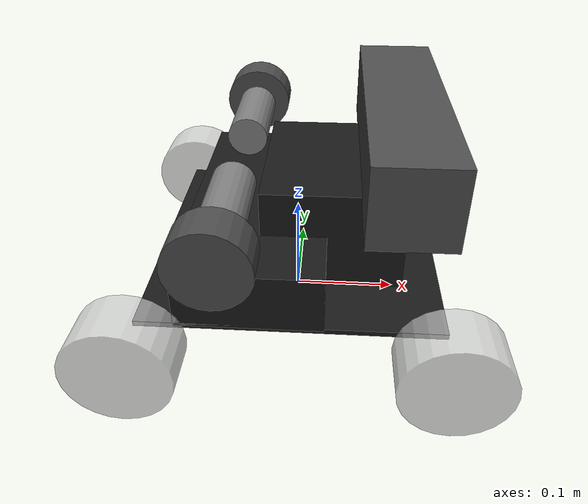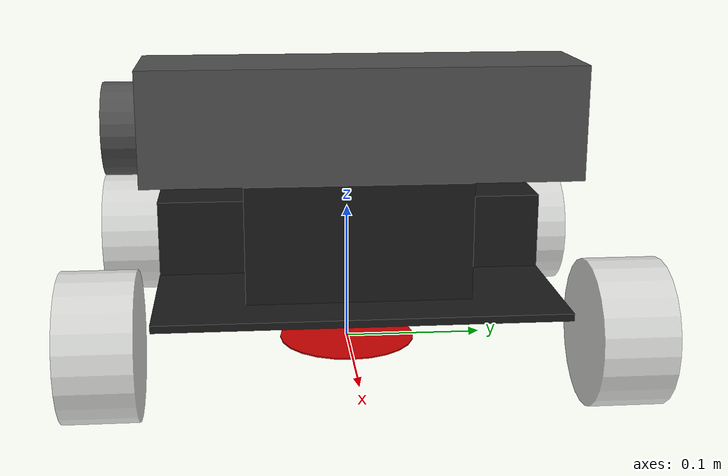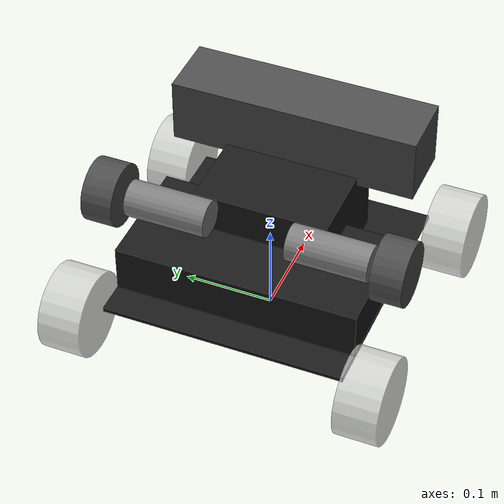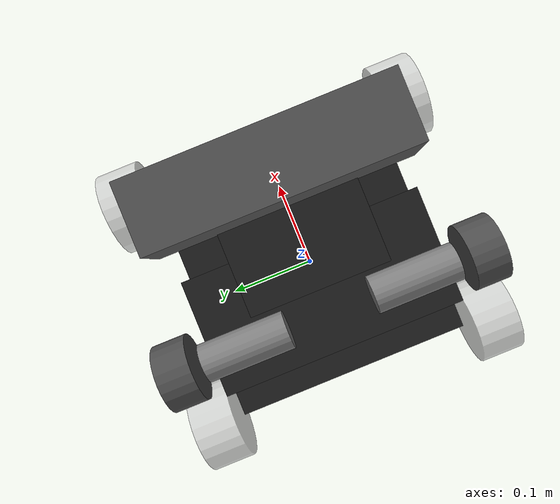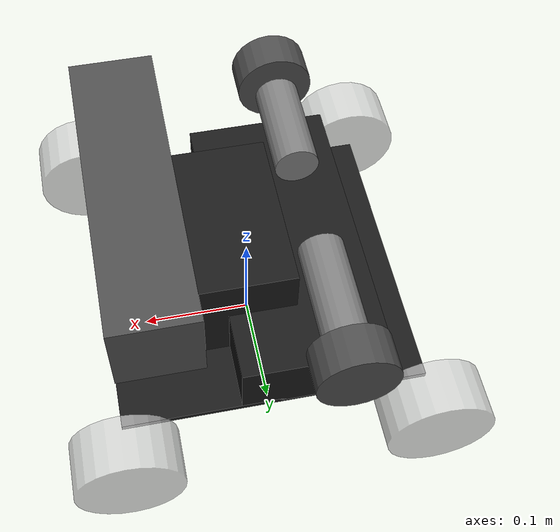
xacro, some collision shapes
<?xml version="1.0"?>
<robot name="myzharbot_robot" xmlns:xacro="http://ros.org/wiki/xacro">

  <!-- Included URDF/XACRO Files -->
  <xacro:include filename="$(find myzharbot_description)/urdf/materials.urdf" />
  <xacro:include filename="$(find myzharbot_description)/urdf/passive_sprocket.urdf.xacro" />
  <xacro:include filename="$(find myzharbot_description)/urdf/active_sprocket.urdf.xacro" />
  <xacro:include filename="$(find myzharbot_description)/urdf/motor.urdf.xacro" />
  <xacro:include filename="$(find myzharbot_description)/urdf/sensors/asus_xtion_pro.urdf.xacro"/>
  <!-- Included URDF/XACRO Files -->

  <!-- Global properties -->
  <property name="M_PI" value="3.14159"/>
  <!-- Global properties -->

  <!-- Sprockets params -->
  <property name="active_sprocket_radius" value="0.034925"/>
  <property name="passive_sprocket_radius" value="0.047625"/>
  <property name="active_sprocket_leght" value="0.034925"/>
  <property name="passive_sprocket_leght" value="0.047625"/>
  <property name="passive_sprocket_offset_x" value="0.135"/>
  <property name="passive_sprocket_offset_y" value="0.165"/>
  <property name="passive_sprocket_offset_z" value="0.047625"/>
  <property name="active_sprocket_offset_x" value="-0.055"/>
  <property name="active_sprocket_offset_y" value="0.160"/>
  <property name="active_sprocket_offset_z" value="0.150"/>
  <!-- Sprockets params -->

  <!-- Asus Xtion params -->
  <property name="cam_px" value="0.095" />
  <property name="cam_py" value="0.022" />
  <property name="cam_pz" value="0.1825" />
  <property name="cam_or" value="0" />
  <property name="cam_op" value="0" />
  <property name="cam_oy" value="0" />
  <!-- Asus Xtion params -->

  <!-- base_link -->
  <link name="base_link">
    <visual>
      <origin rpy="0 0 0" xyz="0 0 0"/>
      <geometry>
        <cylinder length=".001" radius="0.05"/>
      </geometry>
      <material name="Red" />
    </visual>
  </link>
  <!-- base_link -->

  <!-- Body chassis -->
  <link name="body_bottom_chassis_link">
    <visual>
      <geometry>
        <box size="0.27 0.27 .005"/>
      </geometry>
      <material name="Black" />
    </visual>
  </link>
  <joint name="Body_bottom" type="fixed">
    <axis xyz="0 0 1"/>
    <parent link="base_link"/>
    <child link="body_bottom_chassis_link"/>
    <origin rpy="0 0 0" xyz="0 0 ${passive_sprocket_offset_z+0.01}"/>
    <joint_properties damping="0.0" friction="0.0"/>
  </joint>

  <link name="body_top_chassis_link">
    <visual>
      <geometry>
        <box size="0.13 0.27 .055"/>
      </geometry>
      <material name="Black" />
    </visual>
  </link>
  <joint name="Body_top" type="fixed">
    <axis xyz="0 0 1"/>
    <parent link="base_link"/>
    <child link="body_top_chassis_link"/>
    <origin rpy="0 0 0" xyz="-0.035 0 ${passive_sprocket_offset_z+0.0375}"/>
    <joint_properties damping="0.0" friction="0.0"/>
  </joint>

  <link name="asus_support_link">
    <visual>
      <geometry>
        <box size="0.015 0.015 .015"/>
      </geometry>
      <material name="Black" />
    </visual>
  </link>
  <joint name="Asus_support" type="fixed">
    <axis xyz="0 0 1"/>
    <parent link="base_link"/>
    <child link="asus_support_link"/>
    <origin rpy="0 0 0" xyz="${cam_px-0.01725} 0 0.1575"/>
    <joint_properties damping="0.0" friction="0.0"/>
  </joint>
  <!-- Body chassis -->

  <!-- Jetson chassis -->
  <link name="jetson_chassis_link">
    <visual>
      <geometry>
        <box size="0.13 0.15 .095"/>
      </geometry>
      <material name="Black" />
    </visual>
  </link>
  <joint name="Jetson" type="fixed">
    <axis xyz="0 0 1"/>
    <parent link="base_link"/>
    <child link="jetson_chassis_link"/>
    <origin rpy="0 0 0" xyz="0.035 0 ${passive_sprocket_offset_z+0.0125+0.0475}"/>
    <joint_properties damping="0.0" friction="0.0"/>
  </joint>
  <!-- Jetson chassis -->

  <!-- Asus Xtion Pro Live -->
  <xacro:sensor_asus_xtion_pro parent="base_link"/>
  <!-- Asus Xtion Pro Live -->

  <!-- Active Sprockets -->
  <xacro:myzharbot_active_sprocket position="Left">
    <origin xyz="${active_sprocket_offset_x} ${active_sprocket_offset_y} ${active_sprocket_offset_z}" rpy="${-M_PI/2} 0 0" />
  </xacro:myzharbot_active_sprocket>
  <xacro:myzharbot_active_sprocket position="Right">
    <origin xyz="${active_sprocket_offset_x} ${-active_sprocket_offset_y} ${active_sprocket_offset_z}" rpy="${-M_PI/2} 0 0" />
  </xacro:myzharbot_active_sprocket>
  <xacro:myzharbot_motor position="Left">
    <origin xyz="${active_sprocket_offset_x} ${active_sprocket_offset_y-2*active_sprocket_leght} ${active_sprocket_offset_z}" rpy="${-M_PI/2} 0 0" />
  </xacro:myzharbot_motor>
  <xacro:myzharbot_motor position="Right">
    <origin xyz="${active_sprocket_offset_x} ${-(active_sprocket_offset_y-2*active_sprocket_leght)} ${active_sprocket_offset_z}" rpy="${-M_PI/2} 0 0" />
  </xacro:myzharbot_motor>
  <!-- Active Sprockets -->

  <!-- Passive Sprockets -->
  <xacro:myzharbot_passive_sprocket sprocket_suffix="bfl" position="Left">
    <origin xyz="${passive_sprocket_offset_x} ${passive_sprocket_offset_y} ${passive_sprocket_offset_z}" rpy="${-M_PI/2} 0 0" />
  </xacro:myzharbot_passive_sprocket>
  <xacro:myzharbot_passive_sprocket sprocket_suffix="brl" position="Left">
    <origin xyz="${-passive_sprocket_offset_x} ${passive_sprocket_offset_y} ${passive_sprocket_offset_z}" rpy="${-M_PI/2} 0 0" />
  </xacro:myzharbot_passive_sprocket>
  <xacro:myzharbot_passive_sprocket sprocket_suffix="bfr" position="Right">
    <origin xyz="${passive_sprocket_offset_x} ${-passive_sprocket_offset_y} ${passive_sprocket_offset_z}" rpy="${-M_PI/2} 0 0" />
  </xacro:myzharbot_passive_sprocket>
  <xacro:myzharbot_passive_sprocket sprocket_suffix="brr" position="Right">
    <origin xyz="${-passive_sprocket_offset_x} ${-passive_sprocket_offset_y} ${passive_sprocket_offset_z}" rpy="${-M_PI/2} 0 0" />
  </xacro:myzharbot_passive_sprocket>
  <!-- Passive Sprockets -->

</robot>

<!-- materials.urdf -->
<robot name="myzharbot_materials">

  <material name="Black">
    <color rgba="0.1 0.1 0.1 1.0"/>
  </material>

  <material name="Blue">
    <color rgba="0.0 0.0 0.8 1.0"/>
  </material>

  <material name="Green">
    <color rgba="0.0 0.8 0.0 1.0"/>
  </material>

  <material name="Grey">
    <color rgba="0.5 0.5 0.5 1.0"/>
  </material>

  <material name="DarkGrey">
    <color rgba="0.3 0.3 0.3 1.0"/>
  </material>

  <material name="LightGreyT">
    <color rgba="0.8 0.8 0.8 0.7"/>
  </material>

  <material name="Red">
    <color rgba="0.8 0.0 0.0 1.0"/>
  </material>

  <material name="White">
    <color rgba="1.0 1.0 1.0 1.0"/>
  </material>

  <material name="Yellow">
    <color rgba="0.8 0.8 0.0 1.0"/>
  </material>
</robot>

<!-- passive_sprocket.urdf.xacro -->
<robot xmlns:xacro="http://ros.org/wiki/xacro" name="myzharbot_passive_sprocket">

  <xacro:macro name="myzharbot_passive_sprocket" params="sprocket_suffix position *joint_pose">

    <link name="spr_${sprocket_suffix}">
      <visual>
        <geometry>
          <cylinder length="${passive_sprocket_leght}" radius="${passive_sprocket_radius}"/>
        </geometry>
        <material name="LightGreyT" />
      </visual>
    </link>

    <joint name="Sprocket_${sprocket_suffix}" type="continuous">
      <parent link="base_link"/>
      <child link="spr_${sprocket_suffix}"/>
      <limit effort="100" velocity="100"/>
      <joint_properties damping="0.0" friction="0.0"/>
      <xacro:insert_block name="joint_pose"/>
      <axis xyz="0 0 1" rpy="0 0 0"/>
      <!-- Passive sprocket rotate automatically according to the status of the active one -->
      <mimic joint="${position}" multiplier="${active_sprocket_radius/passive_sprocket_radius}" offset="0"/>
    </joint>

  </xacro:macro>

</robot>

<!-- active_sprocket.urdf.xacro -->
<robot xmlns:xacro="http://ros.org/wiki/xacro" name="myzharbot_active_sprocket">

  <xacro:macro name="myzharbot_active_sprocket" params="position *joint_pose">

    <link name="${position}_wheel">
      <visual>
        <geometry>
          <cylinder length="${active_sprocket_leght}" radius="${active_sprocket_radius}"/>
        </geometry>
        <material name="DarkGrey" />
      </visual>
      <collision>
        <origin xyz="0 0 0" rpy="0 0 0" />
        <geometry>
          <cylinder length="${active_sprocket_leght}" radius="${active_sprocket_radius}"/>
        </geometry>
      </collision>
    </link>

    <joint name="${position}" type="continuous">
      <parent link="base_link"/>
      <child link="${position}_wheel"/>
      <limit effort="100" velocity="100"/>
      <joint_properties damping="0.0" friction="0.0"/>
      <xacro:insert_block name="joint_pose"/>
      <axis xyz="0 0 1"/>
    </joint>

  </xacro:macro>

</robot>

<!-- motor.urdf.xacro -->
<robot xmlns:xacro="http://ros.org/wiki/xacro" name="myzharbot_motor">

  <xacro:macro name="myzharbot_motor" params="position *joint_pose">

    <link name="${position}_motor_link">
      <visual>
        <geometry>
          <cylinder length="0.09" radius="0.02"/>
        </geometry>
        <material name="Grey" />
      </visual>
    </link>

    <joint name="${position}_motor" type="fixed">
      <parent link="base_link"/>
      <child link="${position}_motor_link"/>
      <limit effort="100" velocity="100"/>
      <joint_properties damping="0.0" friction="0.0"/>
      <xacro:insert_block name="joint_pose"/>
      <axis xyz="0 0 1"/>
    </joint>

  </xacro:macro>

</robot>

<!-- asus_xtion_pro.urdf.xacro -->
<robot name="sensor_asus_xtion_pro" xmlns:xacro="http://ros.org/wiki/xacro">

  <!-- Xacro properties -->
  <xacro:property name="M_SCALE" value="0.001"/>
  <xacro:property name="asus_xtion_pro_depth_rel_rgb_py" value="0.0270" />
  <xacro:property name="asus_xtion_pro_cam_rel_rgb_py"   value="-0.0220" />

  <!-- Parameterised in part by the values in turtlebot_properties.urdf.xacro -->
  <xacro:macro name="sensor_asus_xtion_pro" params="parent">
    <joint name="rgbd_camera_rgb_joint" type="fixed">
      <origin xyz="${cam_px} ${cam_py} ${cam_pz}"
              rpy="${cam_or} ${cam_op} ${cam_oy}"/>
      <parent link="${parent}"/>
      <child link="rgbd_camera_rgb_frame" />
    </joint>
    <link name="rgbd_camera_rgb_frame"/>

    <joint name="camera_rgb_optical_joint" type="fixed">
      <origin xyz="0 0 0" rpy="${-M_PI/2} 0 ${-M_PI/2}" />
      <parent link="rgbd_camera_rgb_frame" />
      <child link="rgbd_camera_rgb_optical_frame" />
    </joint>
    <link name="rgbd_camera_rgb_optical_frame"/>

    <joint name="rgbd_camera_joint" type="fixed">
      <origin xyz="0 ${asus_xtion_pro_cam_rel_rgb_py} 0"
              rpy="0 0 0"/>
      <parent link="rgbd_camera_rgb_frame"/>
      <child link="rgbd_camera_link"/>
    </joint>
    <link name="rgbd_camera_link">
      <visual>
        <origin xyz="-0.01 0 0" rpy="${-M_PI/2} -${M_PI} ${-M_PI/2}"/>
        <geometry>
          <mesh filename="package://ros_myzharbot_robot/meshes/sensors/asus_xtion_pro_live.dae" scale="${M_SCALE} ${M_SCALE} ${M_SCALE}"/>
        </geometry>
        <material name="DarkGrey" />
      </visual>
      <collision>
        <origin xyz="0.0 0.0 0.0" rpy="0 0 0" />
        <geometry>
        <box size="0.0730 0.2760 0.0720"/>
      </geometry>
      </collision>
      <inertial>
        <mass value="0.170" />
        <origin xyz="0 0 0" />
        <inertia ixx="0.001152600" ixy="0.0" ixz="0.0"
                 iyy="0.000148934" iyz="0.0"
                 izz="0.001154654" />
      </inertial>
    </link>

    <joint name="rgbd_camera_depth_joint" type="fixed">
      <origin xyz="0 ${asus_xtion_pro_depth_rel_rgb_py} 0" rpy="0 0 0" />
      <parent link="rgbd_camera_rgb_frame" />
      <child link="rgbd_camera_depth_frame" />
    </joint>
    <link name="rgbd_camera_depth_frame"/>

    <joint name="camera_depth_optical_joint" type="fixed">
      <origin xyz="0 0 0" rpy="${-M_PI/2} 0 ${-M_PI/2}" />
      <parent link="rgbd_camera_depth_frame" />
      <child link="rgbd_camera_depth_optical_frame" />
    </joint>
    <link name="rgbd_camera_depth_optical_frame"/>

  </xacro:macro>
</robot>
